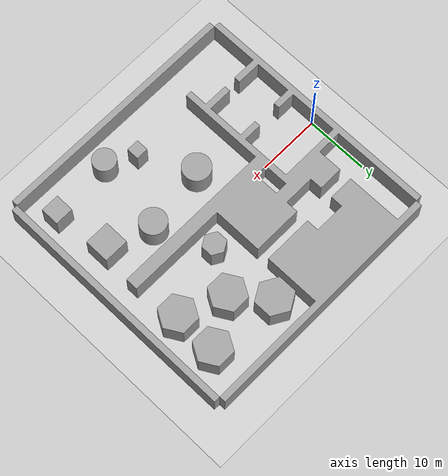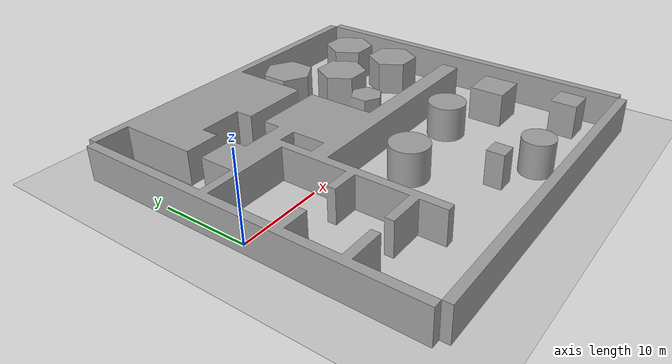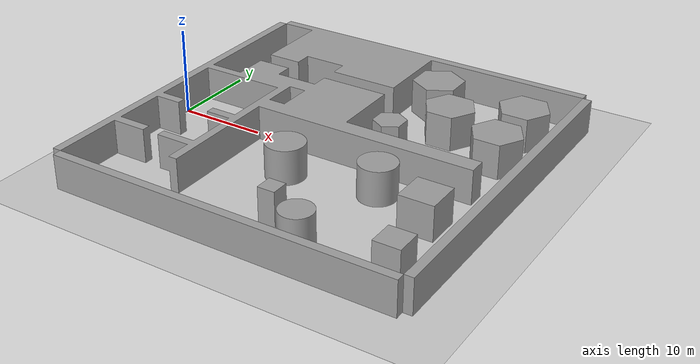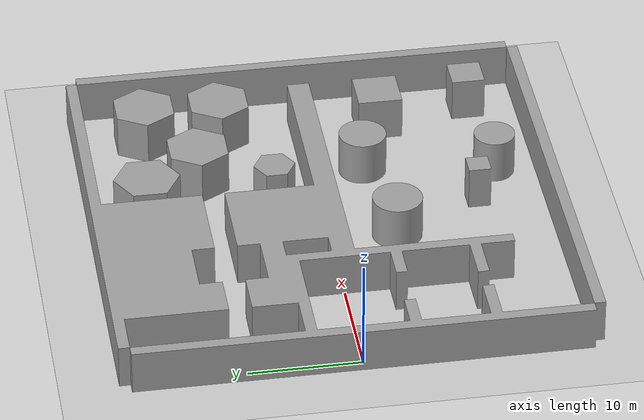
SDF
<sdf version="1.4">
  <world name="default">

    <scene>
      <ambient>0.4 0.4 0.4 1</ambient>
      <background>0.7 0.7 0.7 1</background>
      <shadows>true</shadows>
    </scene>

    <!-- A global light source -->
    <include>
      <uri>model://sun</uri>
    </include>

    <!-- A ground plane -->
    <include>
      <uri>model://ground_plane</uri>
    </include>

    <include>
    <uri>model://my_models</uri>
    <pose>0 0 0 0 0 0</pose>  <!-- x y z roll pitch yaw -->
    </include>

    <physics type="ode">
      <real_time_update_rate>1000.0</real_time_update_rate>
      <max_step_size>0.001</max_step_size>
      <real_time_factor>1</real_time_factor>
      <ode>
        <solver>
          <type>quick</type>
          <iters>150</iters>
          <precon_iters>0</precon_iters>
          <sor>1.400000</sor>
          <use_dynamic_moi_rescaling>1</use_dynamic_moi_rescaling>
        </solver>
        <constraints>
          <cfm>0.00001</cfm>
          <erp>0.2</erp>
          <contact_max_correcting_vel>2000.000000</contact_max_correcting_vel>
          <contact_surface_layer>0.01000</contact_surface_layer>
        </constraints>
      </ode>
    </physics>
  </world>

</sdf>

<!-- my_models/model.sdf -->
<sdf version="1.6">
  <model name="my_environment">
    <static>true</static>
    <link name="link">
      <visual name="visual">
        <geometry>
          <mesh>
            <uri>model://my_models/mesh/jikkennkankyou.dae</uri>
          </mesh>
        </geometry>
      </visual>
      <collision name="collision">
        <geometry>
          <mesh>
            <uri>model://my_models/mesh/jikkennkankyou.dae</uri>
          </mesh>
        </geometry>
      </collision>
    </link>
  </model>
</sdf>
